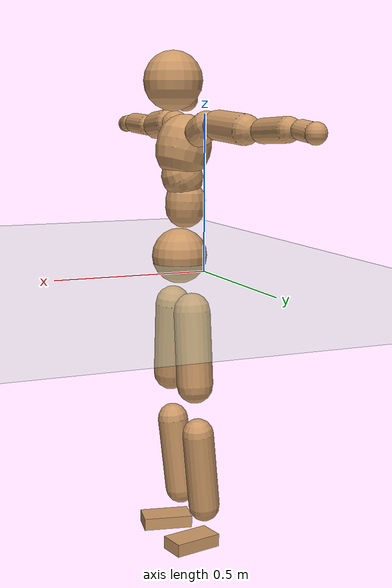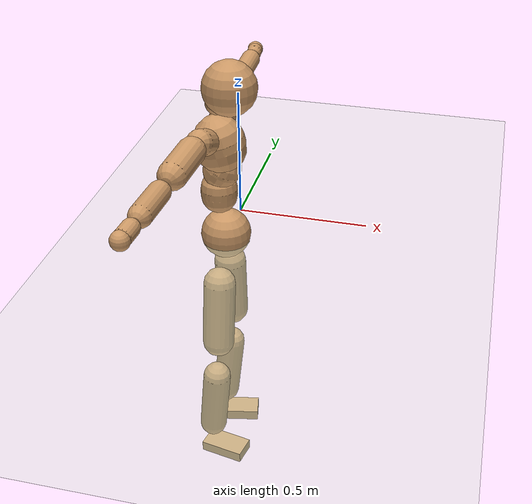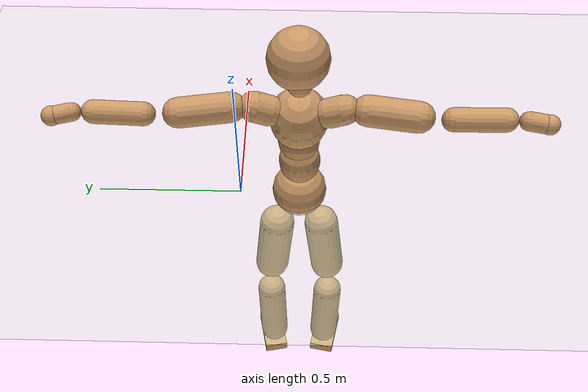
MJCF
<mujoco model="humanoid">
  <compiler coordinate="local" angle="radian"/>
  <default>
    <joint damping="0.0" armature="0.01" stiffness="0.0" limited="true"/>
    <geom conaffinity="1" condim="3" contype="7" margin="0.001" rgba="0.8 0.6 .4 1"/>
  </default>
  <asset>
    <texture type="skybox" builtin="gradient" rgb1=".4 .5 .6" rgb2="0 0 0" width="100" height="100"/>
    <texture builtin="flat" height="1278" mark="cross" markrgb="1 1 1" name="texgeom" random="0.01" rgb1="0.8 0.6 0.4" rgb2="0.8 0.6 0.4" type="cube" width="127"/>
    <texture builtin="checker" height="100" name="texplane" rgb1="0 0 0" rgb2="0.8 0.8 0.8" type="2d" width="100"/>
    <material name="MatPlane" reflectance="0.5" shininess="1" specular="1" texrepeat="60 60" texture="texplane"/>
    <material name="geom" texture="texgeom" texuniform="true"/>
  </asset>
  <worldbody>
    <light cutoff="100" diffuse="1 1 1" dir="-0 0 -1.3" directional="true" exponent="1" pos="0 0 1.3" specular=".1 .1 .1"/>
    <geom conaffinity="1" condim="3" name="floor" pos="0 0 0" rgba="0.8 0.9 0.8 1" size="100 100 .2" type="plane" material="MatPlane"/>
    <body name="Pelvis" pos="-0.0002 -0.2081 0.023">
      <freejoint name="Pelvis"/>
      <geom type="sphere" contype="1" conaffinity="1" density="500" size="0.0943" pos="0.0000 0.0000 0.0000" name="Pelvis"/>
      <body name="L_Hip" pos="-0.0115 0.0731 -0.0951">
        <joint name="L_Hip_x" type="hinge" pos="0 0 0" axis="1 0 0" stiffness="800" damping="80" armature="0.02" range="-180.0000 180.0000"/>
        <joint name="L_Hip_y" type="hinge" pos="0 0 0" axis="0 1 0" stiffness="800" damping="80" armature="0.02" range="-180.0000 180.0000"/>
        <joint name="L_Hip_z" type="hinge" pos="0 0 0" axis="0 0 1" stiffness="800" damping="80" armature="0.02" range="-180.0000 180.0000"/>
        <geom type="capsule" contype="1" conaffinity="1" density="500" fromto="-0.0007 0.0080 -0.0847 -0.0028 0.0321 -0.3388" size="0.0622" name="L_Hip"/>
        <body name="L_Knee" pos="-0.0035 0.0401 -0.4236">
          <joint name="L_Knee_x" type="hinge" pos="0 0 0" axis="1 0 0" stiffness="800" damping="80" armature="0.02" range="-180.0000 180.0000"/>
          <joint name="L_Knee_y" type="hinge" pos="0 0 0" axis="0 1 0" stiffness="800" damping="80" armature="0.02" range="-180.0000 180.0000"/>
          <joint name="L_Knee_z" type="hinge" pos="0 0 0" axis="0 0 1" stiffness="800" damping="80" armature="0.02" range="-180.0000 180.0000"/>
          <geom type="capsule" contype="1" conaffinity="1" density="500" fromto="-0.0095 -0.0025 -0.0895 -0.0380 -0.0100 -0.3581" size="0.054" name="L_Knee"/>
          <body name="L_Ankle" pos="-0.0475 -0.0124 -0.4477">
            <joint name="L_Ankle_x" type="hinge" pos="0 0 0" axis="1 0 0" stiffness="800" damping="80" armature="0.02" range="-180.0000 180.0000"/>
            <joint name="L_Ankle_y" type="hinge" pos="0 0 0" axis="0 1 0" stiffness="800" damping="80" armature="0.02" range="-180.0000 180.0000"/>
            <joint name="L_Ankle_z" type="hinge" pos="0 0 0" axis="0 0 1" stiffness="800" damping="80" armature="0.02" range="-180.0000 180.0000"/>
            <geom type="box" contype="1" conaffinity="1" density="500" pos="0.0612 0.0125 -0.0310" size="0.0854 0.0454 0.0223" quat="0.9950 0.0000 0.0000 0.1002" name="L_Ankle"/>
            <body name="L_Toe" pos="0.1224 0.0249 -0.0619">
              <joint name="L_Toe_x" type="hinge" pos="0 0 0" axis="1 0 0" stiffness="500" damping="50" armature="0.02" range="-180.0000 180.0000"/>
              <joint name="L_Toe_y" type="hinge" pos="0 0 0" axis="0 1 0" stiffness="500" damping="50" armature="0.02" range="-180.0000 180.0000"/>
              <joint name="L_Toe_z" type="hinge" pos="0 0 0" axis="0 0 1" stiffness="500" damping="50" armature="0.02" range="-180.0000 180.0000"/>
              <geom type="box" contype="1" conaffinity="1" density="500" pos="0.0000 0.0000 0.0306" size="0.0009 0.0023 0.0011" quat="0.9943 0.0000 0.0000 0.1063" name="L_Toe"/>
            </body>
          </body>
        </body>
      </body>
      <body name="R_Hip" pos="-0.007 -0.0704 -0.094">
        <joint name="R_Hip_x" type="hinge" pos="0 0 0" axis="1 0 0" stiffness="800" damping="80" armature="0.02" range="-180.0000 180.0000"/>
        <joint name="R_Hip_y" type="hinge" pos="0 0 0" axis="0 1 0" stiffness="800" damping="80" armature="0.02" range="-180.0000 180.0000"/>
        <joint name="R_Hip_z" type="hinge" pos="0 0 0" axis="0 0 1" stiffness="800" damping="80" armature="0.02" range="-180.0000 180.0000"/>
        <geom type="capsule" contype="1" conaffinity="1" density="500" fromto="-0.0013 -0.0094 -0.0863 -0.0051 -0.0376 -0.3453" size="0.0613" name="R_Hip"/>
        <body name="R_Knee" pos="-0.0064 -0.047 -0.4317">
          <joint name="R_Knee_x" type="hinge" pos="0 0 0" axis="1 0 0" stiffness="800" damping="80" armature="0.02" range="-180.0000 180.0000"/>
          <joint name="R_Knee_y" type="hinge" pos="0 0 0" axis="0 1 0" stiffness="800" damping="80" armature="0.02" range="-180.0000 180.0000"/>
          <joint name="R_Knee_z" type="hinge" pos="0 0 0" axis="0 0 1" stiffness="800" damping="80" armature="0.02" range="-180.0000 180.0000"/>
          <geom type="capsule" contype="1" conaffinity="1" density="500" fromto="-0.0090 0.0033 -0.0897 -0.0359 0.0131 -0.3586" size="0.0543" name="R_Knee"/>
          <body name="R_Ankle" pos="-0.0448 0.0164 -0.4483">
            <joint name="R_Ankle_x" type="hinge" pos="0 0 0" axis="1 0 0" stiffness="800" damping="80" armature="0.02" range="-180.0000 180.0000"/>
            <joint name="R_Ankle_y" type="hinge" pos="0 0 0" axis="0 1 0" stiffness="800" damping="80" armature="0.02" range="-180.0000 180.0000"/>
            <joint name="R_Ankle_z" type="hinge" pos="0 0 0" axis="0 0 1" stiffness="800" damping="80" armature="0.02" range="-180.0000 180.0000"/>
            <geom type="box" contype="1" conaffinity="1" density="500" pos="0.0630 -0.0122 -0.0266" size="0.0878 0.0469 0.0216" quat="0.9954 0.0000 0.0000 -0.0954" name="R_Ankle"/>
            <body name="R_Toe" pos="0.1259 -0.0243 -0.0532">
              <joint name="R_Toe_x" type="hinge" pos="0 0 0" axis="1 0 0" stiffness="500" damping="50" armature="0.02" range="-180.0000 180.0000"/>
              <joint name="R_Toe_y" type="hinge" pos="0 0 0" axis="0 1 0" stiffness="500" damping="50" armature="0.02" range="-180.0000 180.0000"/>
              <joint name="R_Toe_z" type="hinge" pos="0 0 0" axis="0 0 1" stiffness="500" damping="50" armature="0.02" range="-180.0000 180.0000"/>
              <geom type="box" contype="1" conaffinity="1" density="500" pos="0.0000 0.0000 0.0289" size="0.0008 0.0023 0.0012" quat="0.9963 0.0000 0.0000 -0.0864" name="R_Toe"/>
            </body>
          </body>
        </body>
      </body>
      <body name="Torso" pos="-0.0206 -0.0028 0.1088">
        <joint name="Torso_x" type="hinge" pos="0 0 0" axis="1 0 0" stiffness="1000" damping="100" armature="0.02" range="-180.0000 180.0000"/>
        <joint name="Torso_y" type="hinge" pos="0 0 0" axis="0 1 0" stiffness="1000" damping="100" armature="0.02" range="-180.0000 180.0000"/>
        <joint name="Torso_z" type="hinge" pos="0 0 0" axis="0 0 1" stiffness="1000" damping="100" armature="0.02" range="-180.0000 180.0000"/>
        <geom type="capsule" contype="1" conaffinity="1" density="500" fromto="-0.0008 0.0023 0.0804 -0.0005 0.0015 0.0536" size="0.0681" name="Torso"/>
        <body name="Spine" pos="-0.0014 0.0038 0.1339">
          <joint name="Spine_x" type="hinge" pos="0 0 0" axis="1 0 0" stiffness="1000" damping="100" armature="0.02" range="-180.0000 180.0000"/>
          <joint name="Spine_y" type="hinge" pos="0 0 0" axis="0 1 0" stiffness="1000" damping="100" armature="0.02" range="-180.0000 180.0000"/>
          <joint name="Spine_z" type="hinge" pos="0 0 0" axis="0 0 1" stiffness="1000" damping="100" armature="0.02" range="-180.0000 180.0000"/>
          <geom type="capsule" contype="1" conaffinity="1" density="500" fromto="0.0163 0.0007 0.0307 0.0108 0.0005 0.0204" size="0.0689" name="Spine"/>
          <body name="Chest" pos="0.0271 0.0012 0.0511">
            <joint name="Chest_x" type="hinge" pos="0 0 0" axis="1 0 0" stiffness="1000" damping="100" armature="0.02" range="-180.0000 180.0000"/>
            <joint name="Chest_y" type="hinge" pos="0 0 0" axis="0 1 0" stiffness="1000" damping="100" armature="0.02" range="-180.0000 180.0000"/>
            <joint name="Chest_z" type="hinge" pos="0 0 0" axis="0 0 1" stiffness="1000" damping="100" armature="0.02" range="-180.0000 180.0000"/>
            <geom type="capsule" contype="1" conaffinity="1" density="500" fromto="-0.0225 -0.0012 0.0900 -0.0150 -0.0008 0.0600" size="0.0932" name="Chest"/>
            <body name="Neck" pos="-0.0378 -0.0037 0.2161">
              <joint name="Neck_x" type="hinge" pos="0 0 0" axis="1 0 0" stiffness="500" damping="50" armature="0.02" range="-180.0000 180.0000"/>
              <joint name="Neck_y" type="hinge" pos="0 0 0" axis="0 1 0" stiffness="500" damping="50" armature="0.02" range="-180.0000 180.0000"/>
              <joint name="Neck_z" type="hinge" pos="0 0 0" axis="0 0 1" stiffness="500" damping="50" armature="0.02" range="-180.0000 180.0000"/>
              <geom type="capsule" contype="1" conaffinity="1" density="500" fromto="0.0117 0.0011 0.0148 0.0470 0.0045 0.0591" size="0.0408" name="Neck"/>
              <body name="Head" pos="0.0587 0.0057 0.0739">
                <joint name="Head_x" type="hinge" pos="0 0 0" axis="1 0 0" stiffness="500" damping="50" armature="0.02" range="-180.0000 180.0000"/>
                <joint name="Head_y" type="hinge" pos="0 0 0" axis="0 1 0" stiffness="500" damping="50" armature="0.02" range="-180.0000 180.0000"/>
                <joint name="Head_z" type="hinge" pos="0 0 0" axis="0 0 1" stiffness="500" damping="50" armature="0.02" range="-180.0000 180.0000"/>
                <geom type="sphere" contype="1" conaffinity="1" density="500" size="0.0989" pos="0.0000 0.0000 0.0000" name="Head"/>
              </body>
            </body>
            <body name="L_Thorax" pos="-0.0347 0.0742 0.1177">
              <joint name="L_Thorax_x" type="hinge" pos="0 0 0" axis="1 0 0" stiffness="500" damping="50" armature="0.02" range="-180.0000 180.0000"/>
              <joint name="L_Thorax_y" type="hinge" pos="0 0 0" axis="0 1 0" stiffness="500" damping="50" armature="0.02" range="-180.0000 180.0000"/>
              <joint name="L_Thorax_z" type="hinge" pos="0 0 0" axis="0 0 1" stiffness="500" damping="50" armature="0.02" range="-180.0000 180.0000"/>
              <geom type="capsule" contype="1" conaffinity="1" density="500" fromto="-0.0013 0.0161 0.0069 -0.0053 0.0643 0.0276" size="0.049" name="L_Thorax"/>
              <body name="L_Shoulder" pos="-0.0066 0.0804 0.0345">
                <joint name="L_Shoulder_x" type="hinge" pos="0 0 0" axis="1 0 0" stiffness="500" damping="50" armature="0.02" range="-720.0000 720.0000"/>
                <joint name="L_Shoulder_y" type="hinge" pos="0 0 0" axis="0 1 0" stiffness="500" damping="50" armature="0.02" range="-720.0000 720.0000"/>
                <joint name="L_Shoulder_z" type="hinge" pos="0 0 0" axis="0 0 1" stiffness="500" damping="50" armature="0.02" range="-720.0000 720.0000"/>
                <geom type="capsule" contype="1" conaffinity="1" density="500" fromto="-0.0058 0.0545 -0.0036 -0.0231 0.2178 -0.0143" size="0.0482" name="L_Shoulder"/>
                <body name="L_Elbow" pos="-0.0289 0.2723 -0.0179">
                  <joint name="L_Elbow_x" type="hinge" pos="0 0 0" axis="1 0 0" stiffness="500" damping="50" armature="0.02" range="-720.0000 720.0000"/>
                  <joint name="L_Elbow_y" type="hinge" pos="0 0 0" axis="0 1 0" stiffness="500" damping="50" armature="0.02" range="-720.0000 720.0000"/>
                  <joint name="L_Elbow_z" type="hinge" pos="0 0 0" axis="0 0 1" stiffness="500" damping="50" armature="0.02" range="-720.0000 720.0000"/>
                  <geom type="capsule" contype="1" conaffinity="1" density="500" fromto="-0.0003 0.0511 0.0024 -0.0012 0.2043 0.0095" size="0.0377" name="L_Elbow"/>
                  <body name="L_Wrist" pos="-0.0015 0.2554 0.0119">
                    <joint name="L_Wrist_x" type="hinge" pos="0 0 0" axis="1 0 0" stiffness="300" damping="30" armature="0.02" range="-180.0000 180.0000"/>
                    <joint name="L_Wrist_y" type="hinge" pos="0 0 0" axis="0 1 0" stiffness="300" damping="30" armature="0.02" range="-180.0000 180.0000"/>
                    <joint name="L_Wrist_z" type="hinge" pos="0 0 0" axis="0 0 1" stiffness="300" damping="30" armature="0.02" range="-180.0000 180.0000"/>
                    <geom type="capsule" contype="1" conaffinity="1" density="500" fromto="-0.0027 0.0157 -0.0020 -0.0107 0.0629 -0.0079" size="0.0294" name="L_Wrist"/>
                    <body name="L_Hand" pos="-0.0134 0.0786 -0.0098">
                      <joint name="L_Hand_x" type="hinge" pos="0 0 0" axis="1 0 0" stiffness="300" damping="30" armature="0.02" range="-180.0000 180.0000"/>
                      <joint name="L_Hand_y" type="hinge" pos="0 0 0" axis="0 1 0" stiffness="300" damping="30" armature="0.02" range="-180.0000 180.0000"/>
                      <joint name="L_Hand_z" type="hinge" pos="0 0 0" axis="0 0 1" stiffness="300" damping="30" armature="0.02" range="-180.0000 180.0000"/>
                      <geom type="sphere" contype="1" conaffinity="1" density="500" size="0.0317" pos="0.0000 0.0000 0.0000" name="L_Hand"/>
                    </body>
                  </body>
                </body>
              </body>
            </body>
            <body name="R_Thorax" pos="-0.0401 -0.0764 0.116">
              <joint name="R_Thorax_x" type="hinge" pos="0 0 0" axis="1 0 0" stiffness="500" damping="50" armature="0.02" range="-180.0000 180.0000"/>
              <joint name="R_Thorax_y" type="hinge" pos="0 0 0" axis="0 1 0" stiffness="500" damping="50" armature="0.02" range="-180.0000 180.0000"/>
              <joint name="R_Thorax_z" type="hinge" pos="0 0 0" axis="0 0 1" stiffness="500" damping="50" armature="0.02" range="-180.0000 180.0000"/>
              <geom type="capsule" contype="1" conaffinity="1" density="500" fromto="-0.0016 -0.0168 0.0073 -0.0063 -0.0670 0.0291" size="0.0479" name="R_Thorax"/>
              <body name="R_Shoulder" pos="-0.0078 -0.0838 0.0363">
                <joint name="R_Shoulder_x" type="hinge" pos="0 0 0" axis="1 0 0" stiffness="500" damping="50" armature="0.02" range="-720.0000 720.0000"/>
                <joint name="R_Shoulder_y" type="hinge" pos="0 0 0" axis="0 1 0" stiffness="500" damping="50" armature="0.02" range="-720.0000 720.0000"/>
                <joint name="R_Shoulder_z" type="hinge" pos="0 0 0" axis="0 0 1" stiffness="500" damping="50" armature="0.02" range="-720.0000 720.0000"/>
                <geom type="capsule" contype="1" conaffinity="1" density="500" fromto="-0.0047 -0.0529 -0.0036 -0.0186 -0.2115 -0.0144" size="0.0499" name="R_Shoulder"/>
                <body name="R_Elbow" pos="-0.0233 -0.2643 -0.018">
                  <joint name="R_Elbow_x" type="hinge" pos="0 0 0" axis="1 0 0" stiffness="500" damping="50" armature="0.02" range="-720.0000 720.0000"/>
                  <joint name="R_Elbow_y" type="hinge" pos="0 0 0" axis="0 1 0" stiffness="500" damping="50" armature="0.02" range="-720.0000 720.0000"/>
                  <joint name="R_Elbow_z" type="hinge" pos="0 0 0" axis="0 0 1" stiffness="500" damping="50" armature="0.02" range="-720.0000 720.0000"/>
                  <geom type="capsule" contype="1" conaffinity="1" density="500" fromto="-0.0012 -0.0530 0.0019 -0.0050 -0.2121 0.0078" size="0.0382" name="R_Elbow"/>
                  <body name="R_Wrist" pos="-0.0062 -0.2651 0.0097">
                    <joint name="R_Wrist_x" type="hinge" pos="0 0 0" axis="1 0 0" stiffness="300" damping="30" armature="0.02" range="-180.0000 180.0000"/>
                    <joint name="R_Wrist_y" type="hinge" pos="0 0 0" axis="0 1 0" stiffness="300" damping="30" armature="0.02" range="-180.0000 180.0000"/>
                    <joint name="R_Wrist_z" type="hinge" pos="0 0 0" axis="0 0 1" stiffness="300" damping="30" armature="0.02" range="-180.0000 180.0000"/>
                    <geom type="capsule" contype="1" conaffinity="1" density="500" fromto="-0.0021 -0.0159 -0.0014 -0.0082 -0.0637 -0.0058" size="0.0303" name="R_Wrist"/>
                    <body name="R_Hand" pos="-0.0103 -0.0796 -0.0072">
                      <joint name="R_Hand_x" type="hinge" pos="0 0 0" axis="1 0 0" stiffness="300" damping="30" armature="0.02" range="-180.0000 180.0000"/>
                      <joint name="R_Hand_y" type="hinge" pos="0 0 0" axis="0 1 0" stiffness="300" damping="30" armature="0.02" range="-180.0000 180.0000"/>
                      <joint name="R_Hand_z" type="hinge" pos="0 0 0" axis="0 0 1" stiffness="300" damping="30" armature="0.02" range="-180.0000 180.0000"/>
                      <geom type="sphere" contype="1" conaffinity="1" density="500" size="0.0319" pos="0.0000 0.0000 0.0000" name="R_Hand"/>
                    </body>
                  </body>
                </body>
              </body>
            </body>
          </body>
        </body>
      </body>
    </body>
  </worldbody>
  <actuator>
    <motor name="L_Hip_x" joint="L_Hip_x" gear="500"/>
    <motor name="L_Hip_y" joint="L_Hip_y" gear="500"/>
    <motor name="L_Hip_z" joint="L_Hip_z" gear="500"/>
    <motor name="L_Knee_x" joint="L_Knee_x" gear="500"/>
    <motor name="L_Knee_y" joint="L_Knee_y" gear="500"/>
    <motor name="L_Knee_z" joint="L_Knee_z" gear="500"/>
    <motor name="L_Ankle_x" joint="L_Ankle_x" gear="500"/>
    <motor name="L_Ankle_y" joint="L_Ankle_y" gear="500"/>
    <motor name="L_Ankle_z" joint="L_Ankle_z" gear="500"/>
    <motor name="L_Toe_x" joint="L_Toe_x" gear="500"/>
    <motor name="L_Toe_y" joint="L_Toe_y" gear="500"/>
    <motor name="L_Toe_z" joint="L_Toe_z" gear="500"/>
    <motor name="R_Hip_x" joint="R_Hip_x" gear="500"/>
    <motor name="R_Hip_y" joint="R_Hip_y" gear="500"/>
    <motor name="R_Hip_z" joint="R_Hip_z" gear="500"/>
    <motor name="R_Knee_x" joint="R_Knee_x" gear="500"/>
    <motor name="R_Knee_y" joint="R_Knee_y" gear="500"/>
    <motor name="R_Knee_z" joint="R_Knee_z" gear="500"/>
    <motor name="R_Ankle_x" joint="R_Ankle_x" gear="500"/>
    <motor name="R_Ankle_y" joint="R_Ankle_y" gear="500"/>
    <motor name="R_Ankle_z" joint="R_Ankle_z" gear="500"/>
    <motor name="R_Toe_x" joint="R_Toe_x" gear="500"/>
    <motor name="R_Toe_y" joint="R_Toe_y" gear="500"/>
    <motor name="R_Toe_z" joint="R_Toe_z" gear="500"/>
    <motor name="Torso_x" joint="Torso_x" gear="500"/>
    <motor name="Torso_y" joint="Torso_y" gear="500"/>
    <motor name="Torso_z" joint="Torso_z" gear="500"/>
    <motor name="Spine_x" joint="Spine_x" gear="500"/>
    <motor name="Spine_y" joint="Spine_y" gear="500"/>
    <motor name="Spine_z" joint="Spine_z" gear="500"/>
    <motor name="Chest_x" joint="Chest_x" gear="500"/>
    <motor name="Chest_y" joint="Chest_y" gear="500"/>
    <motor name="Chest_z" joint="Chest_z" gear="500"/>
    <motor name="Neck_x" joint="Neck_x" gear="500"/>
    <motor name="Neck_y" joint="Neck_y" gear="500"/>
    <motor name="Neck_z" joint="Neck_z" gear="500"/>
    <motor name="Head_x" joint="Head_x" gear="500"/>
    <motor name="Head_y" joint="Head_y" gear="500"/>
    <motor name="Head_z" joint="Head_z" gear="500"/>
    <motor name="L_Thorax_x" joint="L_Thorax_x" gear="500"/>
    <motor name="L_Thorax_y" joint="L_Thorax_y" gear="500"/>
    <motor name="L_Thorax_z" joint="L_Thorax_z" gear="500"/>
    <motor name="L_Shoulder_x" joint="L_Shoulder_x" gear="500"/>
    <motor name="L_Shoulder_y" joint="L_Shoulder_y" gear="500"/>
    <motor name="L_Shoulder_z" joint="L_Shoulder_z" gear="500"/>
    <motor name="L_Elbow_x" joint="L_Elbow_x" gear="500"/>
    <motor name="L_Elbow_y" joint="L_Elbow_y" gear="500"/>
    <motor name="L_Elbow_z" joint="L_Elbow_z" gear="500"/>
    <motor name="L_Wrist_x" joint="L_Wrist_x" gear="500"/>
    <motor name="L_Wrist_y" joint="L_Wrist_y" gear="500"/>
    <motor name="L_Wrist_z" joint="L_Wrist_z" gear="500"/>
    <motor name="L_Hand_x" joint="L_Hand_x" gear="500"/>
    <motor name="L_Hand_y" joint="L_Hand_y" gear="500"/>
    <motor name="L_Hand_z" joint="L_Hand_z" gear="500"/>
    <motor name="R_Thorax_x" joint="R_Thorax_x" gear="500"/>
    <motor name="R_Thorax_y" joint="R_Thorax_y" gear="500"/>
    <motor name="R_Thorax_z" joint="R_Thorax_z" gear="500"/>
    <motor name="R_Shoulder_x" joint="R_Shoulder_x" gear="500"/>
    <motor name="R_Shoulder_y" joint="R_Shoulder_y" gear="500"/>
    <motor name="R_Shoulder_z" joint="R_Shoulder_z" gear="500"/>
    <motor name="R_Elbow_x" joint="R_Elbow_x" gear="500"/>
    <motor name="R_Elbow_y" joint="R_Elbow_y" gear="500"/>
    <motor name="R_Elbow_z" joint="R_Elbow_z" gear="500"/>
    <motor name="R_Wrist_x" joint="R_Wrist_x" gear="500"/>
    <motor name="R_Wrist_y" joint="R_Wrist_y" gear="500"/>
    <motor name="R_Wrist_z" joint="R_Wrist_z" gear="500"/>
    <motor name="R_Hand_x" joint="R_Hand_x" gear="500"/>
    <motor name="R_Hand_y" joint="R_Hand_y" gear="500"/>
    <motor name="R_Hand_z" joint="R_Hand_z" gear="500"/>
  </actuator>
  <contact>
    <exclude body1="Torso" body2="Chest"/>
    <exclude body1="Head" body2="Chest"/>
    <exclude body1="R_Knee" body2="R_Toe"/>
    <exclude body1="R_Knee" body2="L_Ankle"/>
    <exclude body1="R_Knee" body2="L_Toe"/>
    <exclude body1="L_Knee" body2="L_Toe"/>
    <exclude body1="L_Knee" body2="R_Ankle"/>
    <exclude body1="L_Knee" body2="R_Toe"/>
    <exclude body1="L_Shoulder" body2="Chest"/>
    <exclude body1="R_Shoulder" body2="Chest"/>
  </contact>
  <sensor/>
  <size njmax="700" nconmax="700"/>
</mujoco>
